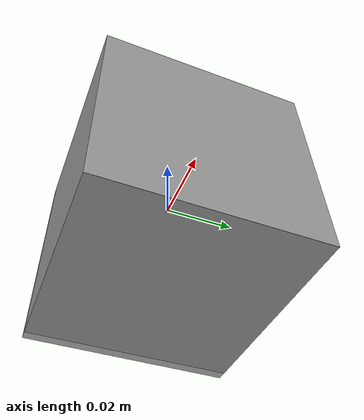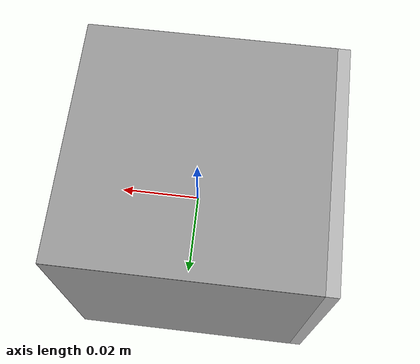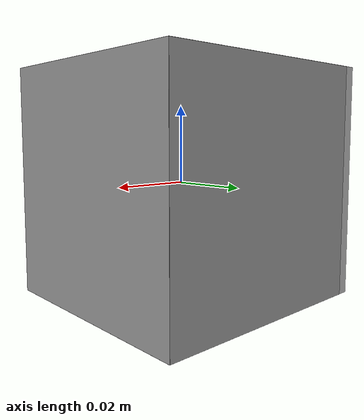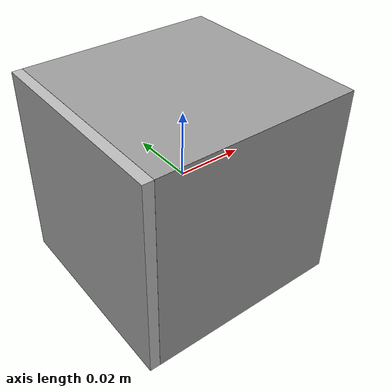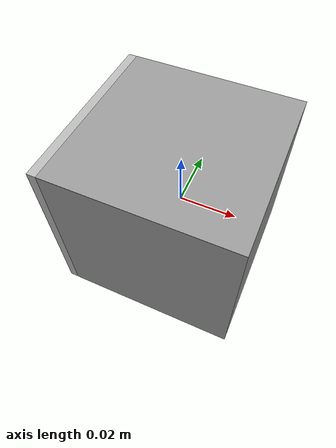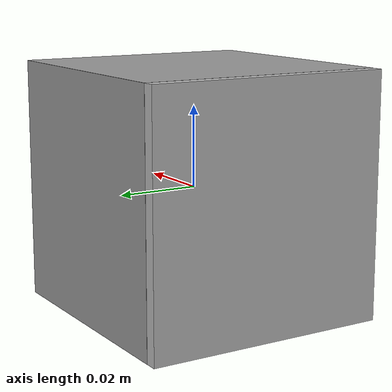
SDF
<?xml version='1.0'?>
<sdf version='1.7'>
  <model name='arm_small_box'>
    <link name='link_0'>
      <inertial>
        <mass>0.0216</mass>  <!-- 质量按体积比例缩小 (0.1kg * 6^3/10^3) -->
        <inertia>
          <ixx>0.001296</ixx>  <!-- 惯性矩按比例重新计算 (原值*6^5/10^5) -->
          <ixy>0</ixy>
          <ixz>0</ixz>
          <iyy>0.001296</iyy>
          <iyz>0</iyz>
          <izz>0.001296</izz>
        </inertia>
        <pose>0 0 0 0 -0 0</pose>
      </inertial>
      <pose>0 0 0 0 -0 0</pose>
      <gravity>1</gravity>
      <self_collide>0</self_collide>
      <kinematic>0</kinematic>
      <enable_wind>0</enable_wind>

      <!-- X轴负方向面（左侧面，二维码面） -->
      <visual name='left_visual'>
        <pose>-0.03 0 0 0 -0 0</pose>  <!-- 偏移量改为6cm的一半 -->
        <geometry>
          <box>
            <size>0.006 0.06 0.06</size>  <!-- 厚度0.6cm，面积6cm×6cm -->
          </box>
        </geometry>
        <material>
          <script>
            <uri>model://arm_small_box_3/materials/scripts</uri>
            <uri>model://arm_small_box_3/materials/textures</uri>
            <name>QR_Material_3</name>
          </script>
          <texture>
            <diffuse>model://arm_small_box_3/materials/textures/qr_003.png</diffuse>
          </texture>
        </material>
      </visual>

      <!-- 其他五个面 -->
      <!-- X轴正方向面（右侧面） -->
      <visual name='right_visual'>
        <pose>0.03 0 0 0 -0 0</pose>
        <geometry>
          <box>
            <size>0.00006 0.06 0.06</size>  <!-- 厚度0.06mm -->
          </box>
        </geometry>
        <material>
          <script>
            <uri>file://media/materials/scripts/gazebo.material</uri>
            <name>Gazebo/Grey</name>
          </script>
        </material>
      </visual>

      <!-- 前表面（Y轴正方向） -->
      <visual name='front_visual'>
        <pose>0 0.03 0 0 -0 0</pose>
        <geometry>
          <box>
            <size>0.06 0.00006 0.06</size>
          </box>
        </geometry>
        <material>
          <script>
            <uri>file://media/materials/scripts/gazebo.material</uri>
            <name>Gazebo/Grey</name>
          </script>
        </material>
      </visual>

      <!-- 后表面（Y轴负方向） -->
      <visual name='back_visual'>
        <pose>0 -0.03 0 0 -0 0</pose>
        <geometry>
          <box>
            <size>0.06 0.00006 0.06</size>
          </box>
        </geometry>
        <material>
          <script>
            <uri>file://media/materials/scripts/gazebo.material</uri>
            <name>Gazebo/Grey</name>
          </script>
        </material>
      </visual>

      <!-- 上表面（Z轴正方向） -->
      <visual name='top_visual'>
        <pose>0 0 0.03 0 -0 0</pose>
        <geometry>
          <box>
            <size>0.06 0.06 0.00006</size>
          </box>
        </geometry>
        <material>
          <script>
            <uri>file://media/materials/scripts/gazebo.material</uri>
            <name>Gazebo/Grey</name>
          </script>
        </material>
      </visual>

      <!-- 下表面（Z轴负方向） -->
      <visual name='bottom_visual'>
        <pose>0 0 -0.03 0 -0 0</pose>
        <geometry>
          <box>
            <size>0.06 0.06 0.00006</size>
          </box>
        </geometry>
        <material>
          <script>
            <uri>file://media/materials/scripts/gazebo.material</uri>
            <name>Gazebo/Grey</name>
          </script>
        </material>
      </visual>

      <!-- 碰撞元素 -->
      <collision name='collision'>
        <laser_retro>0</laser_retro>
        <max_contacts>10</max_contacts>
        <pose>0 0 0 0 -0 0</pose>
        <geometry>
          <box>
            <size>0.06 0.06 0.06</size>  <!-- 整体碰撞体积6cm立方体 -->
          </box>
        </geometry>
        <surface>
          <friction>
            <ode>
              <mu>1</mu>
              <mu2>1</mu2>
              <fdir1>0 0 0</fdir1>
              <slip1>0</slip1>
              <slip2>0</slip2>
            </ode>
            <torsional>
              <coefficient>1</coefficient>
              <patch_radius>0</patch_radius>
              <surface_radius>0</surface_radius>
              <use_patch_radius>1</use_patch_radius>
              <ode>
                <slip>0</slip>
              </ode>
            </torsional>
          </friction>
          <bounce>
            <restitution_coefficient>0</restitution_coefficient>
            <threshold>1e+06</threshold>
          </bounce>
          <contact>
            <collide_without_contact>0</collide_without_contact>
            <collide_without_contact_bitmask>1</collide_without_contact_bitmask>
            <collide_bitmask>1</collide_bitmask>
            <ode>
              <soft_cfm>0</soft_cfm>
              <soft_erp>0.2</soft_erp>
              <kp>1e+13</kp>
              <kd>1</kd>
              <max_vel>0.01</max_vel>
              <min_depth>0</min_depth>
            </ode>
            <bullet>
              <split_impulse>1</split_impulse>
              <split_impulse_penetration_threshold>-0.01</split_impulse_penetration_threshold>
              <soft_cfm>0</soft_cfm>
              <soft_erp>0.2</soft_erp>
              <kp>1e+13</kp>
              <kd>1</kd>
            </bullet>
          </contact>
        </surface>
      </collision>
    </link>
    <static>0</static>
    <allow_auto_disable>1</allow_auto_disable>
  </model>
</sdf>
